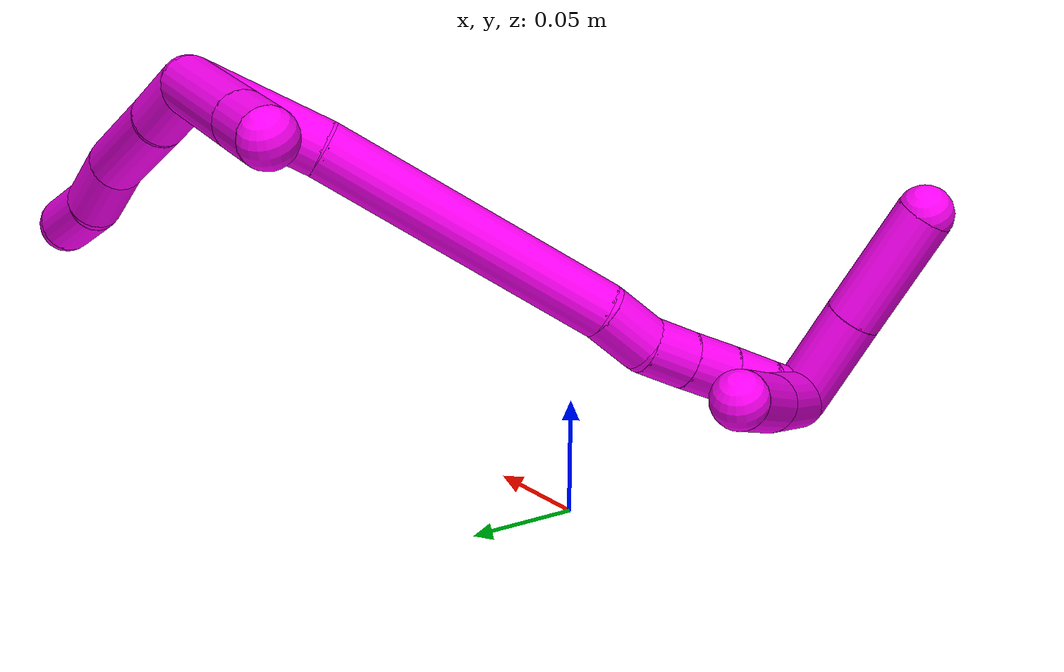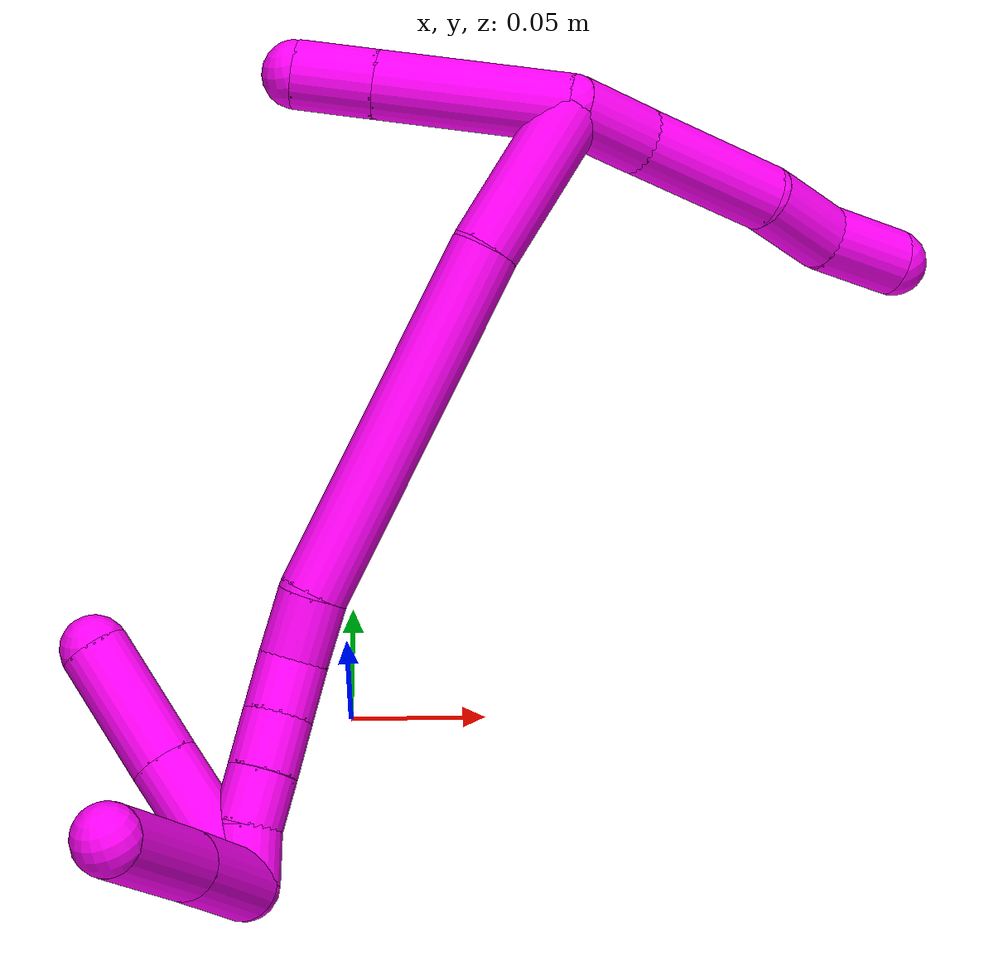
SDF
<sdf version="1.7">
 <world name="default">
  <model name="10">
   <static>0</static>
   <link name="10">
    <collision name="collision-cylinder-e_1_2_8">
     <pose>0.005768 0.008999 -0.011345 -2.47101 0.379036 -1.00646</pose>
     <geometry><cylinder><radius>0.0125</radius><length>0.031175</length></cylinder></geometry>
     <surface>
      <friction><ode><mu>1.16</mu><mu2>1.16</mu2><slip1>0</slip1><slip2>0</slip2></ode></friction>
      <contact><ode><kp>1e+06</kp><kd>1</kd><max_vel>0</max_vel><min_depth>0.001</min_depth></ode></contact>
     </surface>
    </collision>
    <visual name="visual-cylinder-e_1_2_8">
     <pose>0.005768 0.008999 -0.011345 -2.47101 0.379036 -1.00646</pose>
     <geometry><cylinder><radius>0.0125</radius><length>0.031175</length></cylinder></geometry>
     <material><ambient>1 0 0.964706 1</ambient></material>
    </visual>
    <collision name="collision-cylinder-e_2_8_9">
     <pose>0.024678 0.031951 -0.042297 -2.52309 0.49989 -1.34827</pose>
     <geometry><cylinder><radius>0.0125</radius><length>0.054839</length></cylinder></geometry>
     <surface>
      <friction><ode><mu>1.16</mu><mu2>1.16</mu2><slip1>0</slip1><slip2>0</slip2></ode></friction>
      <contact><ode><kp>1e+06</kp><kd>1</kd><max_vel>0</max_vel><min_depth>0.001</min_depth></ode></contact>
     </surface>
    </collision>
    <visual name="visual-cylinder-e_2_8_9">
     <pose>0.024678 0.031951 -0.042297 -2.52309 0.49989 -1.34827</pose>
     <geometry><cylinder><radius>0.0125</radius><length>0.054839</length></cylinder></geometry>
     <material><ambient>1 0 0.964706 1</ambient></material>
    </visual>
    <collision name="collision-cylinder-e_3_9_10">
     <pose>0.041943 0.054475 -0.074862 -2.55726 0.259304 -0.818088</pose>
     <geometry><cylinder><radius>0.0125</radius><length>0.032149</length></cylinder></geometry>
     <surface>
      <friction><ode><mu>1.16</mu><mu2>1.16</mu2><slip1>0</slip1><slip2>0</slip2></ode></friction>
      <contact><ode><kp>1e+06</kp><kd>1</kd><max_vel>0</max_vel><min_depth>0.001</min_depth></ode></contact>
     </surface>
    </collision>
    <visual name="visual-cylinder-e_3_9_10">
     <pose>0.041943 0.054475 -0.074862 -2.55726 0.259304 -0.818088</pose>
     <geometry><cylinder><radius>0.0125</radius><length>0.032149</length></cylinder></geometry>
     <material><ambient>1 0 0.964706 1</ambient></material>
    </visual>
    <collision name="collision-cylinder-e_4_10_6">
     <pose>0.053841 0.07206 -0.098389 -2.43532 0.510354 -1.23181</pose>
     <geometry><cylinder><radius>0.0125</radius><length>0.031837</length></cylinder></geometry>
     <surface>
      <friction><ode><mu>1.16</mu><mu2>1.16</mu2><slip1>0</slip1><slip2>0</slip2></ode></friction>
      <contact><ode><kp>1e+06</kp><kd>1</kd><max_vel>0</max_vel><min_depth>0.001</min_depth></ode></contact>
     </surface>
    </collision>
    <visual name="visual-cylinder-e_4_10_6">
     <pose>0.053841 0.07206 -0.098389 -2.43532 0.510354 -1.23181</pose>
     <geometry><cylinder><radius>0.0125</radius><length>0.031837</length></cylinder></geometry>
     <material><ambient>1 0 0.964706 1</ambient></material>
    </visual>
    <collision name="collision-cylinder-e_1_2_11">
     <pose>-0.030813 -0.011652 0.01247 0.751508 -1.06499 -0.456822</pose>
     <geometry><cylinder><radius>0.0125</radius><length>0.070448</length></cylinder></geometry>
     <surface>
      <friction><ode><mu>1.16</mu><mu2>1.16</mu2><slip1>0</slip1><slip2>0</slip2></ode></friction>
      <contact><ode><kp>1e+06</kp><kd>1</kd><max_vel>0</max_vel><min_depth>0.001</min_depth></ode></contact>
     </surface>
    </collision>
    <visual name="visual-cylinder-e_1_2_11">
     <pose>-0.030813 -0.011652 0.01247 0.751508 -1.06499 -0.456822</pose>
     <geometry><cylinder><radius>0.0125</radius><length>0.070448</length></cylinder></geometry>
     <material><ambient>1 0 0.964706 1</ambient></material>
    </visual>
    <collision name="collision-cylinder-e_2_11_5">
     <pose>-0.074543 -0.028195 0.030192 0.749811 -1.06361 -0.455031</pose>
     <geometry><cylinder><radius>0.0125</radius><length>0.029552</length></cylinder></geometry>
     <surface>
      <friction><ode><mu>1.16</mu><mu2>1.16</mu2><slip1>0</slip1><slip2>0</slip2></ode></friction>
      <contact><ode><kp>1e+06</kp><kd>1</kd><max_vel>0</max_vel><min_depth>0.001</min_depth></ode></contact>
     </surface>
    </collision>
    <visual name="visual-cylinder-e_2_11_5">
     <pose>-0.074543 -0.028195 0.030192 0.749811 -1.06361 -0.455031</pose>
     <geometry><cylinder><radius>0.0125</radius><length>0.029552</length></cylinder></geometry>
     <material><ambient>1 0 0.964706 1</ambient></material>
    </visual>
    <collision name="collision-cylinder-e_1_2_12">
     <pose>-0.010534 -0.023234 -0.015302 2.15319 -0.361955 -0.654774</pose>
     <geometry><cylinder><radius>0.0125</radius><length>0.059496</length></cylinder></geometry>
     <surface>
      <friction><ode><mu>1.16</mu><mu2>1.16</mu2><slip1>0</slip1><slip2>0</slip2></ode></friction>
      <contact><ode><kp>1e+06</kp><kd>1</kd><max_vel>0</max_vel><min_depth>0.001</min_depth></ode></contact>
     </surface>
    </collision>
    <visual name="visual-cylinder-e_1_2_12">
     <pose>-0.010534 -0.023234 -0.015302 2.15319 -0.361955 -0.654774</pose>
     <geometry><cylinder><radius>0.0125</radius><length>0.059496</length></cylinder></geometry>
     <material><ambient>1 0 0.964706 1</ambient></material>
    </visual>
    <collision name="collision-cylinder-e_2_12_13">
     <pose>-0.043369 -0.095446 -0.071791 2.27001 -0.335333 -0.697269</pose>
     <geometry><cylinder><radius>0.0125</radius><length>0.135537</length></cylinder></geometry>
     <surface>
      <friction><ode><mu>1.16</mu><mu2>1.16</mu2><slip1>0</slip1><slip2>0</slip2></ode></friction>
      <contact><ode><kp>1e+06</kp><kd>1</kd><max_vel>0</max_vel><min_depth>0.001</min_depth></ode></contact>
     </surface>
    </collision>
    <visual name="visual-cylinder-e_2_12_13">
     <pose>-0.043369 -0.095446 -0.071791 2.27001 -0.335333 -0.697269</pose>
     <geometry><cylinder><radius>0.0125</radius><length>0.135537</length></cylinder></geometry>
     <material><ambient>1 0 0.964706 1</ambient></material>
    </visual>
    <collision name="collision-cylinder-e_3_13_14">
     <pose>-0.068912 -0.15157 -0.122019 2.47273 -0.27416 -0.755808</pose>
     <geometry><cylinder><radius>0.0125</radius><length>0.023941</length></cylinder></geometry>
     <surface>
      <friction><ode><mu>1.16</mu><mu2>1.16</mu2><slip1>0</slip1><slip2>0</slip2></ode></friction>
      <contact><ode><kp>1e+06</kp><kd>1</kd><max_vel>0</max_vel><min_depth>0.001</min_depth></ode></contact>
     </surface>
    </collision>
    <visual name="visual-cylinder-e_3_13_14">
     <pose>-0.068912 -0.15157 -0.122019 2.47273 -0.27416 -0.755808</pose>
     <geometry><cylinder><radius>0.0125</radius><length>0.023941</length></cylinder></geometry>
     <material><ambient>1 0 0.964706 1</ambient></material>
    </visual>
    <collision name="collision-cylinder-e_4_14_15">
     <pose>-0.07294 -0.166689 -0.137599 2.25767 -0.076231 -0.160835</pose>
     <geometry><cylinder><radius>0.0125</radius><length>0.020683</length></cylinder></geometry>
     <surface>
      <friction><ode><mu>1.16</mu><mu2>1.16</mu2><slip1>0</slip1><slip2>0</slip2></ode></friction>
      <contact><ode><kp>1e+06</kp><kd>1</kd><max_vel>0</max_vel><min_depth>0.001</min_depth></ode></contact>
     </surface>
    </collision>
    <visual name="visual-cylinder-e_4_14_15">
     <pose>-0.07294 -0.166689 -0.137599 2.25767 -0.076231 -0.160835</pose>
     <geometry><cylinder><radius>0.0125</radius><length>0.020683</length></cylinder></geometry>
     <material><ambient>1 0 0.964706 1</ambient></material>
    </visual>
    <collision name="collision-cylinder-e_5_15_16">
     <pose>-0.0743 -0.182614 -0.150448 2.2416 -0.056321 -0.116492</pose>
     <geometry><cylinder><radius>0.0125</radius><length>0.020336</length></cylinder></geometry>
     <surface>
      <friction><ode><mu>1.16</mu><mu2>1.16</mu2><slip1>0</slip1><slip2>0</slip2></ode></friction>
      <contact><ode><kp>1e+06</kp><kd>1</kd><max_vel>0</max_vel><min_depth>0.001</min_depth></ode></contact>
     </surface>
    </collision>
    <visual name="visual-cylinder-e_5_15_16">
     <pose>-0.0743 -0.182614 -0.150448 2.2416 -0.056321 -0.116492</pose>
     <geometry><cylinder><radius>0.0125</radius><length>0.020336</length></cylinder></geometry>
     <material><ambient>1 0 0.964706 1</ambient></material>
    </visual>
    <collision name="collision-cylinder-e_6_16_17">
     <pose>-0.07566 -0.198305 -0.163047 2.25313 -0.078815 -0.165301</pose>
     <geometry><cylinder><radius>0.0125</radius><length>0.020006</length></cylinder></geometry>
     <surface>
      <friction><ode><mu>1.16</mu><mu2>1.16</mu2><slip1>0</slip1><slip2>0</slip2></ode></friction>
      <contact><ode><kp>1e+06</kp><kd>1</kd><max_vel>0</max_vel><min_depth>0.001</min_depth></ode></contact>
     </surface>
    </collision>
    <visual name="visual-cylinder-e_6_16_17">
     <pose>-0.07566 -0.198305 -0.163047 2.25313 -0.078815 -0.165301</pose>
     <geometry><cylinder><radius>0.0125</radius><length>0.020006</length></cylinder></geometry>
     <material><ambient>1 0 0.964706 1</ambient></material>
    </visual>
    <collision name="collision-cylinder-e_7_17_1">
     <pose>-0.075249 -0.21293 -0.176487 2.37516 0.120098 0.296077</pose>
     <geometry><cylinder><radius>0.0125</radius><length>0.020001</length></cylinder></geometry>
     <surface>
      <friction><ode><mu>1.16</mu><mu2>1.16</mu2><slip1>0</slip1><slip2>0</slip2></ode></friction>
      <contact><ode><kp>1e+06</kp><kd>1</kd><max_vel>0</max_vel><min_depth>0.001</min_depth></ode></contact>
     </surface>
    </collision>
    <visual name="visual-cylinder-e_7_17_1">
     <pose>-0.075249 -0.21293 -0.176487 2.37516 0.120098 0.296077</pose>
     <geometry><cylinder><radius>0.0125</radius><length>0.020001</length></cylinder></geometry>
     <material><ambient>1 0 0.964706 1</ambient></material>
    </visual>
    <collision name="collision-cylinder-e_1_1_18">
     <pose>-0.069449 -0.234546 -0.167098 0.727508 0.204856 0.078222</pose>
     <geometry><cylinder><radius>0.0125</radius><length>0.045244</length></cylinder></geometry>
     <surface>
      <friction><ode><mu>1.16</mu><mu2>1.16</mu2><slip1>0</slip1><slip2>0</slip2></ode></friction>
      <contact><ode><kp>1e+06</kp><kd>1</kd><max_vel>0</max_vel><min_depth>0.001</min_depth></ode></contact>
     </surface>
    </collision>
    <visual name="visual-cylinder-e_1_1_18">
     <pose>-0.069449 -0.234546 -0.167098 0.727508 0.204856 0.078222</pose>
     <geometry><cylinder><radius>0.0125</radius><length>0.045244</length></cylinder></geometry>
     <material><ambient>1 0 0.964706 1</ambient></material>
    </visual>
    <collision name="collision-cylinder-e_2_18_4">
     <pose>-0.059082 -0.267379 -0.130844 0.742908 0.212166 0.08291</pose>
     <geometry><cylinder><radius>0.0125</radius><length>0.054756</length></cylinder></geometry>
     <surface>
      <friction><ode><mu>1.16</mu><mu2>1.16</mu2><slip1>0</slip1><slip2>0</slip2></ode></friction>
      <contact><ode><kp>1e+06</kp><kd>1</kd><max_vel>0</max_vel><min_depth>0.001</min_depth></ode></contact>
     </surface>
    </collision>
    <visual name="visual-cylinder-e_2_18_4">
     <pose>-0.059082 -0.267379 -0.130844 0.742908 0.212166 0.08291</pose>
     <geometry><cylinder><radius>0.0125</radius><length>0.054756</length></cylinder></geometry>
     <material><ambient>1 0 0.964706 1</ambient></material>
    </visual>
    <collision name="collision-cylinder-e_1_1_19">
     <pose>-0.090126 -0.211078 -0.164951 -0.437347 -0.661894 0.152411</pose>
     <geometry><cylinder><radius>0.0125</radius><length>0.052308</length></cylinder></geometry>
     <surface>
      <friction><ode><mu>1.16</mu><mu2>1.16</mu2><slip1>0</slip1><slip2>0</slip2></ode></friction>
      <contact><ode><kp>1e+06</kp><kd>1</kd><max_vel>0</max_vel><min_depth>0.001</min_depth></ode></contact>
     </surface>
    </collision>
    <visual name="visual-cylinder-e_1_1_19">
     <pose>-0.090126 -0.211078 -0.164951 -0.437347 -0.661894 0.152411</pose>
     <geometry><cylinder><radius>0.0125</radius><length>0.052308</length></cylinder></geometry>
     <material><ambient>1 0 0.964706 1</ambient></material>
    </visual>
    <collision name="collision-cylinder-e_2_19_3">
     <pose>-0.119914 -0.194784 -0.128276 -0.397782 -0.612725 0.12734</pose>
     <geometry><cylinder><radius>0.0125</radius><length>0.047692</length></cylinder></geometry>
     <surface>
      <friction><ode><mu>1.16</mu><mu2>1.16</mu2><slip1>0</slip1><slip2>0</slip2></ode></friction>
      <contact><ode><kp>1e+06</kp><kd>1</kd><max_vel>0</max_vel><min_depth>0.001</min_depth></ode></contact>
     </surface>
    </collision>
    <visual name="visual-cylinder-e_2_19_3">
     <pose>-0.119914 -0.194784 -0.128276 -0.397782 -0.612725 0.12734</pose>
     <geometry><cylinder><radius>0.0125</radius><length>0.047692</length></cylinder></geometry>
     <material><ambient>1 0 0.964706 1</ambient></material>
    </visual>
    <collision name="collision-sphere-3">
     <pose>-0.133628 -0.187227 -0.110291 0 -0 0</pose>
     <geometry><sphere><radius>0.0125</radius></sphere></geometry>
     <surface>
      <friction><ode><mu>1.16</mu><mu2>1.16</mu2><slip1>0</slip1><slip2>0</slip2></ode></friction>
      <contact><ode><kp>1e+06</kp><kd>1</kd><max_vel>0</max_vel><min_depth>0.001</min_depth></ode></contact>
     </surface>
    </collision>
    <visual name="visual-sphere-3">
     <pose>-0.133628 -0.187227 -0.110291 0 -0 0</pose>
     <geometry><sphere><radius>0.0125</radius></sphere></geometry>
     <material><ambient>1 0 0.964706 1</ambient></material>
    </visual>
    <collision name="collision-sphere-19">
     <pose>-0.1062 -0.202341 -0.146262 0 -0 0</pose>
     <geometry><sphere><radius>0.0125</radius></sphere></geometry>
     <surface>
      <friction><ode><mu>1.16</mu><mu2>1.16</mu2><slip1>0</slip1><slip2>0</slip2></ode></friction>
      <contact><ode><kp>1e+06</kp><kd>1</kd><max_vel>0</max_vel><min_depth>0.001</min_depth></ode></contact>
     </surface>
    </collision>
    <visual name="visual-sphere-19">
     <pose>-0.1062 -0.202341 -0.146262 0 -0 0</pose>
     <geometry><sphere><radius>0.0125</radius></sphere></geometry>
     <material><ambient>1 0 0.964706 1</ambient></material>
    </visual>
    <collision name="collision-sphere-11">
     <pose>-0.061627 -0.023304 0.024939 0 -0 0</pose>
     <geometry><sphere><radius>0.0125</radius></sphere></geometry>
     <surface>
      <friction><ode><mu>1.16</mu><mu2>1.16</mu2><slip1>0</slip1><slip2>0</slip2></ode></friction>
      <contact><ode><kp>1e+06</kp><kd>1</kd><max_vel>0</max_vel><min_depth>0.001</min_depth></ode></contact>
     </surface>
    </collision>
    <visual name="visual-sphere-11">
     <pose>-0.061627 -0.023304 0.024939 0 -0 0</pose>
     <geometry><sphere><radius>0.0125</radius></sphere></geometry>
     <material><ambient>1 0 0.964706 1</ambient></material>
    </visual>
    <collision name="collision-sphere-6">
     <pose>0.061617 0.081075 -0.108957 0 -0 0</pose>
     <geometry><sphere><radius>0.0125</radius></sphere></geometry>
     <surface>
      <friction><ode><mu>1.16</mu><mu2>1.16</mu2><slip1>0</slip1><slip2>0</slip2></ode></friction>
      <contact><ode><kp>1e+06</kp><kd>1</kd><max_vel>0</max_vel><min_depth>0.001</min_depth></ode></contact>
     </surface>
    </collision>
    <visual name="visual-sphere-6">
     <pose>0.061617 0.081075 -0.108957 0 -0 0</pose>
     <geometry><sphere><radius>0.0125</radius></sphere></geometry>
     <material><ambient>1 0 0.964706 1</ambient></material>
    </visual>
    <collision name="collision-sphere-10">
     <pose>0.046064 0.063046 -0.087822 0 -0 0</pose>
     <geometry><sphere><radius>0.0125</radius></sphere></geometry>
     <surface>
      <friction><ode><mu>1.16</mu><mu2>1.16</mu2><slip1>0</slip1><slip2>0</slip2></ode></friction>
      <contact><ode><kp>1e+06</kp><kd>1</kd><max_vel>0</max_vel><min_depth>0.001</min_depth></ode></contact>
     </surface>
    </collision>
    <visual name="visual-sphere-10">
     <pose>0.046064 0.063046 -0.087822 0 -0 0</pose>
     <geometry><sphere><radius>0.0125</radius></sphere></geometry>
     <material><ambient>1 0 0.964706 1</ambient></material>
    </visual>
    <collision name="collision-sphere-9">
     <pose>0.037821 0.045904 -0.061903 0 -0 0</pose>
     <geometry><sphere><radius>0.0125</radius></sphere></geometry>
     <surface>
      <friction><ode><mu>1.16</mu><mu2>1.16</mu2><slip1>0</slip1><slip2>0</slip2></ode></friction>
      <contact><ode><kp>1e+06</kp><kd>1</kd><max_vel>0</max_vel><min_depth>0.001</min_depth></ode></contact>
     </surface>
    </collision>
    <visual name="visual-sphere-9">
     <pose>0.037821 0.045904 -0.061903 0 -0 0</pose>
     <geometry><sphere><radius>0.0125</radius></sphere></geometry>
     <material><ambient>1 0 0.964706 1</ambient></material>
    </visual>
    <collision name="collision-sphere-2">
     <geometry><sphere><radius>0.0125</radius></sphere></geometry>
     <surface>
      <friction><ode><mu>1.16</mu><mu2>1.16</mu2><slip1>0</slip1><slip2>0</slip2></ode></friction>
      <contact><ode><kp>1e+06</kp><kd>1</kd><max_vel>0</max_vel><min_depth>0.001</min_depth></ode></contact>
     </surface>
    </collision>
    <visual name="visual-sphere-2">
     <geometry><sphere><radius>0.0125</radius></sphere></geometry>
     <material><ambient>1 0 0.964706 1</ambient></material>
    </visual>
    <collision name="collision-sphere-8">
     <pose>0.011535 0.017998 -0.022691 0 -0 0</pose>
     <geometry><sphere><radius>0.0125</radius></sphere></geometry>
     <surface>
      <friction><ode><mu>1.16</mu><mu2>1.16</mu2><slip1>0</slip1><slip2>0</slip2></ode></friction>
      <contact><ode><kp>1e+06</kp><kd>1</kd><max_vel>0</max_vel><min_depth>0.001</min_depth></ode></contact>
     </surface>
    </collision>
    <visual name="visual-sphere-8">
     <pose>0.011535 0.017998 -0.022691 0 -0 0</pose>
     <geometry><sphere><radius>0.0125</radius></sphere></geometry>
     <material><ambient>1 0 0.964706 1</ambient></material>
    </visual>
    <collision name="collision-sphere-5">
     <pose>-0.087459 -0.033086 0.035444 0 -0 0</pose>
     <geometry><sphere><radius>0.0125</radius></sphere></geometry>
     <surface>
      <friction><ode><mu>1.16</mu><mu2>1.16</mu2><slip1>0</slip1><slip2>0</slip2></ode></friction>
      <contact><ode><kp>1e+06</kp><kd>1</kd><max_vel>0</max_vel><min_depth>0.001</min_depth></ode></contact>
     </surface>
    </collision>
    <visual name="visual-sphere-5">
     <pose>-0.087459 -0.033086 0.035444 0 -0 0</pose>
     <geometry><sphere><radius>0.0125</radius></sphere></geometry>
     <material><ambient>1 0 0.964706 1</ambient></material>
    </visual>
    <collision name="collision-sphere-12">
     <pose>-0.021068 -0.046468 -0.030604 0 -0 0</pose>
     <geometry><sphere><radius>0.0125</radius></sphere></geometry>
     <surface>
      <friction><ode><mu>1.16</mu><mu2>1.16</mu2><slip1>0</slip1><slip2>0</slip2></ode></friction>
      <contact><ode><kp>1e+06</kp><kd>1</kd><max_vel>0</max_vel><min_depth>0.001</min_depth></ode></contact>
     </surface>
    </collision>
    <visual name="visual-sphere-12">
     <pose>-0.021068 -0.046468 -0.030604 0 -0 0</pose>
     <geometry><sphere><radius>0.0125</radius></sphere></geometry>
     <material><ambient>1 0 0.964706 1</ambient></material>
    </visual>
    <collision name="collision-sphere-13">
     <pose>-0.065671 -0.144424 -0.112979 0 -0 0</pose>
     <geometry><sphere><radius>0.0125</radius></sphere></geometry>
     <surface>
      <friction><ode><mu>1.16</mu><mu2>1.16</mu2><slip1>0</slip1><slip2>0</slip2></ode></friction>
      <contact><ode><kp>1e+06</kp><kd>1</kd><max_vel>0</max_vel><min_depth>0.001</min_depth></ode></contact>
     </surface>
    </collision>
    <visual name="visual-sphere-13">
     <pose>-0.065671 -0.144424 -0.112979 0 -0 0</pose>
     <geometry><sphere><radius>0.0125</radius></sphere></geometry>
     <material><ambient>1 0 0.964706 1</ambient></material>
    </visual>
    <collision name="collision-sphere-14">
     <pose>-0.072153 -0.158715 -0.13106 0 -0 0</pose>
     <geometry><sphere><radius>0.0125</radius></sphere></geometry>
     <surface>
      <friction><ode><mu>1.16</mu><mu2>1.16</mu2><slip1>0</slip1><slip2>0</slip2></ode></friction>
      <contact><ode><kp>1e+06</kp><kd>1</kd><max_vel>0</max_vel><min_depth>0.001</min_depth></ode></contact>
     </surface>
    </collision>
    <visual name="visual-sphere-14">
     <pose>-0.072153 -0.158715 -0.13106 0 -0 0</pose>
     <geometry><sphere><radius>0.0125</radius></sphere></geometry>
     <material><ambient>1 0 0.964706 1</ambient></material>
    </visual>
    <collision name="collision-sphere-15">
     <pose>-0.073728 -0.174662 -0.144138 0 -0 0</pose>
     <geometry><sphere><radius>0.0125</radius></sphere></geometry>
     <surface>
      <friction><ode><mu>1.16</mu><mu2>1.16</mu2><slip1>0</slip1><slip2>0</slip2></ode></friction>
      <contact><ode><kp>1e+06</kp><kd>1</kd><max_vel>0</max_vel><min_depth>0.001</min_depth></ode></contact>
     </surface>
    </collision>
    <visual name="visual-sphere-15">
     <pose>-0.073728 -0.174662 -0.144138 0 -0 0</pose>
     <geometry><sphere><radius>0.0125</radius></sphere></geometry>
     <material><ambient>1 0 0.964706 1</ambient></material>
    </visual>
    <collision name="collision-sphere-16">
     <pose>-0.074873 -0.190566 -0.156758 0 -0 0</pose>
     <geometry><sphere><radius>0.0125</radius></sphere></geometry>
     <surface>
      <friction><ode><mu>1.16</mu><mu2>1.16</mu2><slip1>0</slip1><slip2>0</slip2></ode></friction>
      <contact><ode><kp>1e+06</kp><kd>1</kd><max_vel>0</max_vel><min_depth>0.001</min_depth></ode></contact>
     </surface>
    </collision>
    <visual name="visual-sphere-16">
     <pose>-0.074873 -0.190566 -0.156758 0 -0 0</pose>
     <geometry><sphere><radius>0.0125</radius></sphere></geometry>
     <material><ambient>1 0 0.964706 1</ambient></material>
    </visual>
    <collision name="collision-sphere-17">
     <pose>-0.076448 -0.206044 -0.169335 0 -0 0</pose>
     <geometry><sphere><radius>0.0125</radius></sphere></geometry>
     <surface>
      <friction><ode><mu>1.16</mu><mu2>1.16</mu2><slip1>0</slip1><slip2>0</slip2></ode></friction>
      <contact><ode><kp>1e+06</kp><kd>1</kd><max_vel>0</max_vel><min_depth>0.001</min_depth></ode></contact>
     </surface>
    </collision>
    <visual name="visual-sphere-17">
     <pose>-0.076448 -0.206044 -0.169335 0 -0 0</pose>
     <geometry><sphere><radius>0.0125</radius></sphere></geometry>
     <material><ambient>1 0 0.964706 1</ambient></material>
    </visual>
    <collision name="collision-sphere-1">
     <pose>-0.074051 -0.219816 -0.18364 0 -0 0</pose>
     <geometry><sphere><radius>0.0125</radius></sphere></geometry>
     <surface>
      <friction><ode><mu>1.16</mu><mu2>1.16</mu2><slip1>0</slip1><slip2>0</slip2></ode></friction>
      <contact><ode><kp>1e+06</kp><kd>1</kd><max_vel>0</max_vel><min_depth>0.001</min_depth></ode></contact>
     </surface>
    </collision>
    <visual name="visual-sphere-1">
     <pose>-0.074051 -0.219816 -0.18364 0 -0 0</pose>
     <geometry><sphere><radius>0.0125</radius></sphere></geometry>
     <material><ambient>1 0 0.964706 1</ambient></material>
    </visual>
    <collision name="collision-sphere-18">
     <pose>-0.064847 -0.249275 -0.150556 0 -0 0</pose>
     <geometry><sphere><radius>0.0125</radius></sphere></geometry>
     <surface>
      <friction><ode><mu>1.16</mu><mu2>1.16</mu2><slip1>0</slip1><slip2>0</slip2></ode></friction>
      <contact><ode><kp>1e+06</kp><kd>1</kd><max_vel>0</max_vel><min_depth>0.001</min_depth></ode></contact>
     </surface>
    </collision>
    <visual name="visual-sphere-18">
     <pose>-0.064847 -0.249275 -0.150556 0 -0 0</pose>
     <geometry><sphere><radius>0.0125</radius></sphere></geometry>
     <material><ambient>1 0 0.964706 1</ambient></material>
    </visual>
    <collision name="collision-sphere-4">
     <pose>-0.053317 -0.285483 -0.111133 0 -0 0</pose>
     <geometry><sphere><radius>0.0125</radius></sphere></geometry>
     <surface>
      <friction><ode><mu>1.16</mu><mu2>1.16</mu2><slip1>0</slip1><slip2>0</slip2></ode></friction>
      <contact><ode><kp>1e+06</kp><kd>1</kd><max_vel>0</max_vel><min_depth>0.001</min_depth></ode></contact>
     </surface>
    </collision>
    <visual name="visual-sphere-4">
     <pose>-0.053317 -0.285483 -0.111133 0 -0 0</pose>
     <geometry><sphere><radius>0.0125</radius></sphere></geometry>
     <material><ambient>1 0 0.964706 1</ambient></material>
    </visual>
    <inertial>
     <pose>-0.041042 -0.099325 -0.082896 0 -0 0</pose>
     <mass>0.75</mass>
     <inertia>
      <ixx>6.6e-05</ixx>
      <ixy>0</ixy>
      <ixz>0</ixz>
      <iyy>-0.00019</iyy>
      <iyz>0</iyz>
      <izz>0.000278</izz>
     </inertia>
    </inertial>
   </link>
   <pose>0.083572 0.13209 0.187565 -0.239909 -0.452026 -0.431934</pose>
  </model>
 </world>
</sdf>
